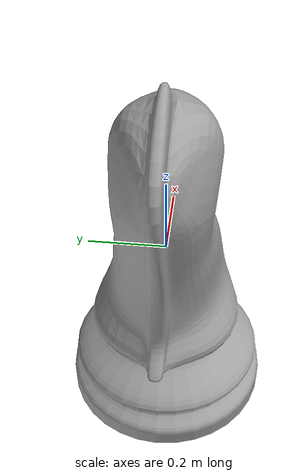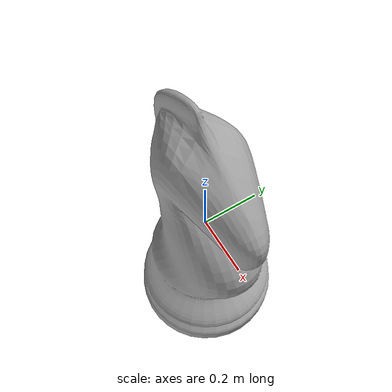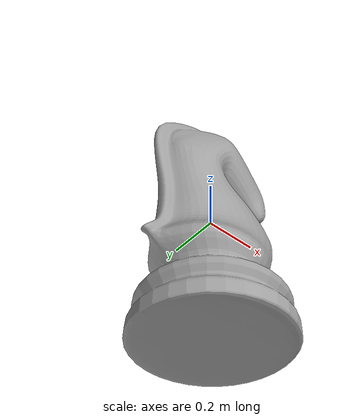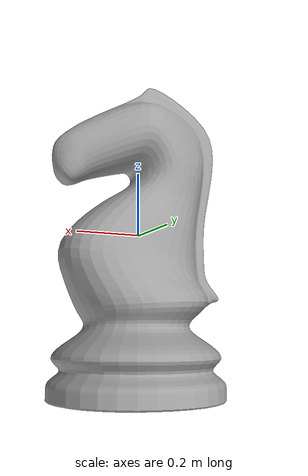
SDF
<?xml version="1.0" ?>
<sdf version="1.5">
  <model name='chess4'>
    <pose>0 0 0 0 0 0</pose>
    <static>1</static>
    <link name='body'>
      <collision name="chess4-coll">
        <pose>0 0 -0.5 0 0 0</pose>
        <geometry>
          <mesh>
            <uri>model://chess4/meshes/chess4.dae</uri>
          </mesh>
        </geometry>
      </collision>
      <visual name='chess4'>
        <cast_shadows>1</cast_shadows>
        <pose>0 0 -0.5 0 0 0</pose>
        <geometry>
          <mesh>
            <uri>model://chess4/meshes/chess4.dae</uri>
          </mesh>
        </geometry>
      </visual>
      <velocity_decay>
        <linear>0</linear>
        <angular>0</angular>
      </velocity_decay>
      <self_collide>0</self_collide>
      <kinematic>0</kinematic>
      <gravity>1</gravity>
    </link>
  </model>

</sdf>
